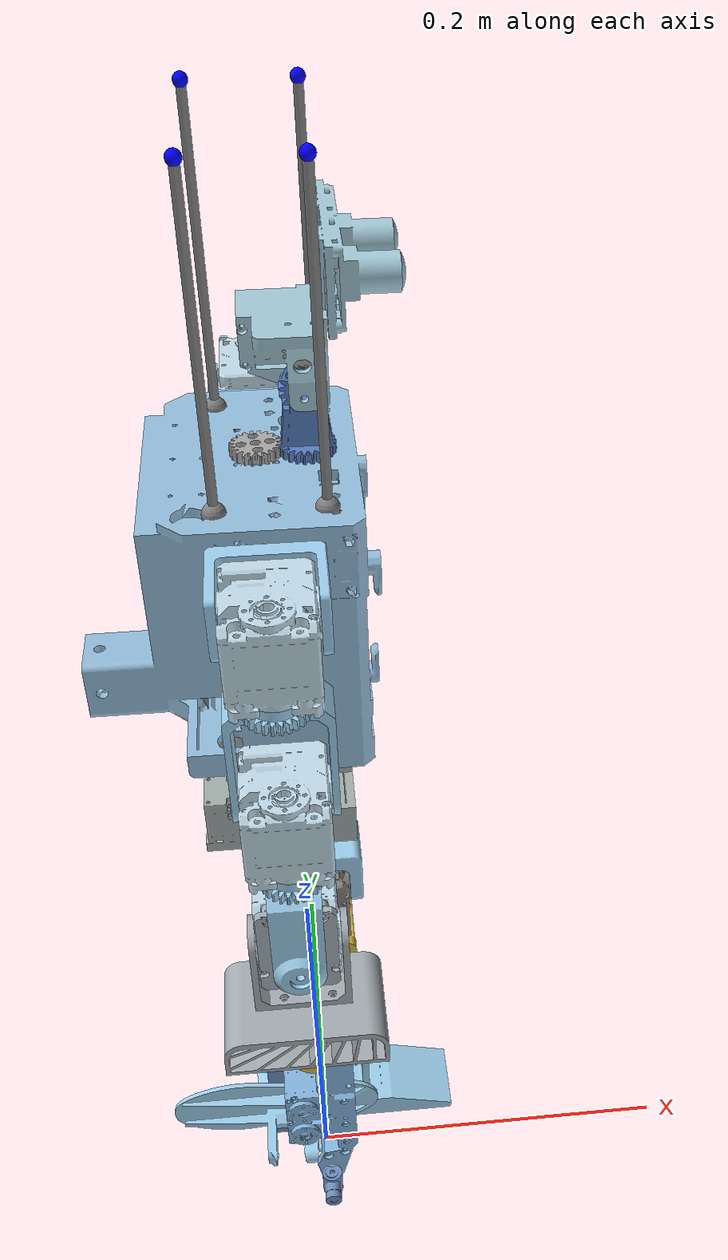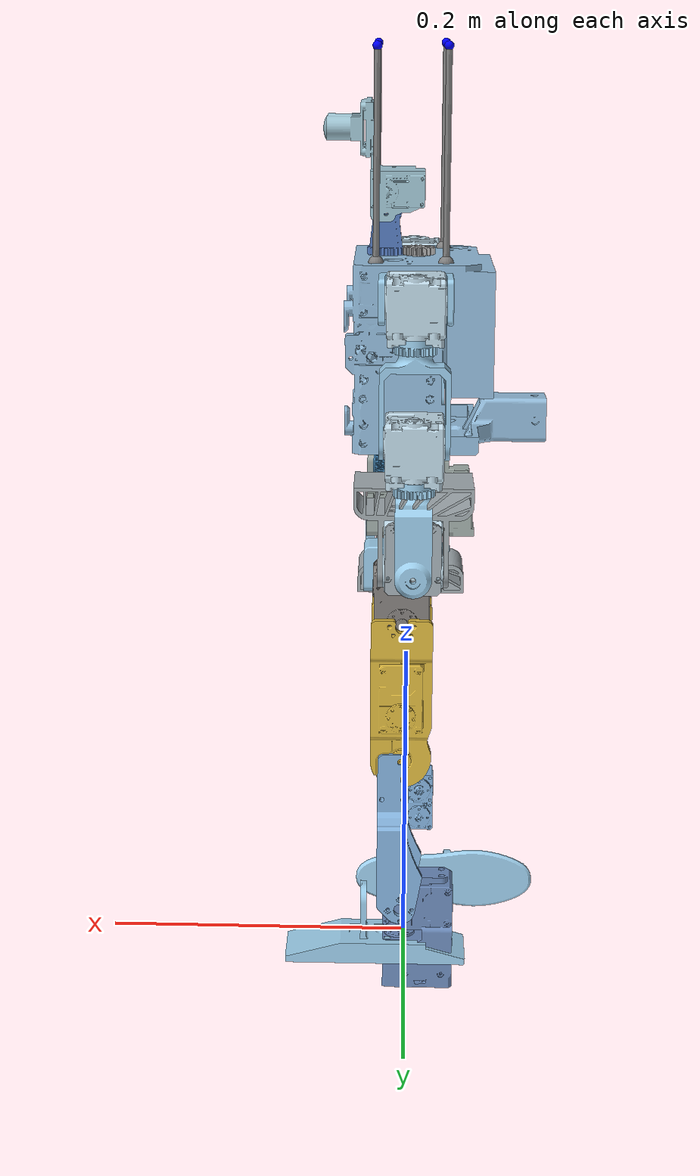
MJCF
<mujoco model="toddlerbot_OP3">
  <compiler angle="radian" autolimits="true" />

  <asset>
    <mesh name="torso_visual" file="../assemblies/toddlerbot/meshes/torso_visual.stl" />
    <mesh name="spur_1m_20t_visual" file="../assemblies/toddlerbot/meshes/spur_1m_20t_visual.stl" />
    <mesh name="neck_yaw_link_visual" file="../assemblies/toddlerbot/meshes/neck_yaw_link_visual.stl" />
    <mesh name="neck_pitch_link_visual" file="../assemblies/toddlerbot/meshes/neck_pitch_link_visual.stl" />
    <mesh name="spur_gear_(13_teeth)_visual" file="../assemblies/toddlerbot/meshes/spur_gear_(13_teeth)_visual.stl" />
    <mesh name="waist_gears_visual" file="../assemblies/toddlerbot/meshes/waist_gears_visual.stl" />
    <mesh name="waist_link_visual" file="../assemblies/toddlerbot/meshes/waist_link_visual.stl" />
    <mesh name="spiral_bevel_1m_14t_30deg_visual" file="../assemblies/toddlerbot/meshes/spiral_bevel_1m_14t_30deg_visual.stl" />
    <mesh name="spiral_bevel_1m_14t_30deg_2_visual" file="../assemblies/toddlerbot/meshes/spiral_bevel_1m_14t_30deg_2_visual.stl" />
    <mesh name="spur_gear_19_teeth_visual" file="../assemblies/toddlerbot/meshes/spur_gear_19_teeth_visual.stl" />
    <mesh name="spur_gear_21_teeth_visual" file="../assemblies/toddlerbot/meshes/spur_gear_21_teeth_visual.stl" />
    <mesh name="spur_gear_19_teeth_2_visual" file="../assemblies/toddlerbot/meshes/spur_gear_19_teeth_2_visual.stl" />
    <mesh name="spur_gear_21_teeth_2_visual" file="../assemblies/toddlerbot/meshes/spur_gear_21_teeth_2_visual.stl" />
    <mesh name="left_hip_yaw_link_visual" file="../assemblies/left_leg_OP3/meshes/left_hip_yaw_link_visual.stl" />
    <mesh name="left_hip_roll_link_visual" file="../assemblies/left_leg_OP3/meshes/left_hip_roll_link_visual.stl" />
    <mesh name="left_hip_pitch_link_xm430_visual" file="../assemblies/left_leg_OP3/meshes/left_hip_pitch_link_xm430_visual.stl" />
    <mesh name="left_calf_link_visual" file="../assemblies/left_leg_OP3/meshes/left_calf_link_visual.stl" />
    <mesh name="left_bearing_683_visual" file="../assemblies/left_leg_OP3/meshes/left_bearing_683_visual.stl" />
    <mesh name="left_bearing_683_2_visual" file="../assemblies/left_leg_OP3/meshes/left_bearing_683_2_visual.stl" />
    <mesh name="left_ank_pitch_link_visual" file="../assemblies/left_leg_OP3/meshes/left_ank_pitch_link_visual.stl" />
    <mesh name="left_ank_roll_link_visual" file="../assemblies/left_leg_OP3/meshes/left_ank_roll_link_visual.stl" />
    <mesh name="left_xm430_plate_visual" file="../assemblies/left_leg_OP3/meshes/left_xm430_plate_visual.stl" />
    <mesh name="left_knee_rod_visual" file="../assemblies/left_leg_OP3/meshes/left_knee_rod_visual.stl" />
    <mesh name="left_knee_rod_2_visual" file="../assemblies/left_leg_OP3/meshes/left_knee_rod_2_visual.stl" />
    <mesh name="right_hip_yaw_link_visual" file="../assemblies/right_leg_OP3/meshes/right_hip_yaw_link_visual.stl" />
    <mesh name="right_hip_roll_link_visual" file="../assemblies/right_leg_OP3/meshes/right_hip_roll_link_visual.stl" />
    <mesh name="right_hip_pitch_link_xm430_visual" file="../assemblies/right_leg_OP3/meshes/right_hip_pitch_link_xm430_visual.stl" />
    <mesh name="right_calf_link_visual" file="../assemblies/right_leg_OP3/meshes/right_calf_link_visual.stl" />
    <mesh name="right_bearing_683_visual" file="../assemblies/right_leg_OP3/meshes/right_bearing_683_visual.stl" />
    <mesh name="right_bearing_683_2_visual" file="../assemblies/right_leg_OP3/meshes/right_bearing_683_2_visual.stl" />
    <mesh name="right_ank_pitch_link_visual" file="../assemblies/right_leg_OP3/meshes/right_ank_pitch_link_visual.stl" />
    <mesh name="right_ank_roll_link_visual" file="../assemblies/right_leg_OP3/meshes/right_ank_roll_link_visual.stl" />
    <mesh name="right_xm430_plate_visual" file="../assemblies/right_leg_OP3/meshes/right_xm430_plate_visual.stl" />
    <mesh name="right_knee_rod_visual" file="../assemblies/right_leg_OP3/meshes/right_knee_rod_visual.stl" />
    <mesh name="right_knee_rod_2_visual" file="../assemblies/right_leg_OP3/meshes/right_knee_rod_2_visual.stl" />
    <mesh name="left_sho_pitch_link_visual" file="../assemblies/left_arm_umi/meshes/left_sho_pitch_link_visual.stl" />
    <mesh name="left_2xl430_gears_visual" file="../assemblies/left_arm_umi/meshes/left_2xl430_gears_visual.stl" />
    <mesh name="left_spur_1m_24t_drive_visual" file="../assemblies/left_arm_umi/meshes/left_spur_1m_24t_drive_visual.stl" />
    <mesh name="left_spur_1m_24t_driven_visual" file="../assemblies/left_arm_umi/meshes/left_spur_1m_24t_driven_visual.stl" />
    <mesh name="left_sho_yaw_link_visual" file="../assemblies/left_arm_umi/meshes/left_sho_yaw_link_visual.stl" />
    <mesh name="left_2xl430_gears_2_visual" file="../assemblies/left_arm_umi/meshes/left_2xl430_gears_2_visual.stl" />
    <mesh name="left_spur_1m_24t_drive_2_visual" file="../assemblies/left_arm_umi/meshes/left_spur_1m_24t_drive_2_visual.stl" />
    <mesh name="left_spur_1m_24t_driven_2_visual" file="../assemblies/left_arm_umi/meshes/left_spur_1m_24t_driven_2_visual.stl" />
    <mesh name="left_elb_yaw_link_visual" file="../assemblies/left_arm_umi/meshes/left_elb_yaw_link_visual.stl" />
    <mesh name="left_spur_1m_24t_driven_3_visual" file="../assemblies/left_arm_umi/meshes/left_spur_1m_24t_driven_3_visual.stl" />
    <mesh name="left_2xl430_gears_3_visual" file="../assemblies/left_arm_umi/meshes/left_2xl430_gears_3_visual.stl" />
    <mesh name="left_spur_1m_24t_drive_3_visual" file="../assemblies/left_arm_umi/meshes/left_spur_1m_24t_drive_3_visual.stl" />
    <mesh name="left_hand_visual" file="../assemblies/left_arm_umi/meshes/left_hand_visual.stl" />
    <mesh name="left_wrist_bearing_plate_visual" file="../assemblies/left_arm_umi/meshes/left_wrist_bearing_plate_visual.stl" />
    <mesh name="right_sho_pitch_link_visual" file="../assemblies/right_arm_umi/meshes/right_sho_pitch_link_visual.stl" />
    <mesh name="right_2xl430_gears_visual" file="../assemblies/right_arm_umi/meshes/right_2xl430_gears_visual.stl" />
    <mesh name="right_spur_1m_24t_drive_visual" file="../assemblies/right_arm_umi/meshes/right_spur_1m_24t_drive_visual.stl" />
    <mesh name="right_spur_1m_24t_driven_visual" file="../assemblies/right_arm_umi/meshes/right_spur_1m_24t_driven_visual.stl" />
    <mesh name="right_sho_yaw_link_visual" file="../assemblies/right_arm_umi/meshes/right_sho_yaw_link_visual.stl" />
    <mesh name="right_2xl430_gears_2_visual" file="../assemblies/right_arm_umi/meshes/right_2xl430_gears_2_visual.stl" />
    <mesh name="right_spur_1m_24t_drive_2_visual" file="../assemblies/right_arm_umi/meshes/right_spur_1m_24t_drive_2_visual.stl" />
    <mesh name="right_spur_1m_24t_driven_2_visual" file="../assemblies/right_arm_umi/meshes/right_spur_1m_24t_driven_2_visual.stl" />
    <mesh name="right_elb_yaw_link_visual" file="../assemblies/right_arm_umi/meshes/right_elb_yaw_link_visual.stl" />
    <mesh name="right_spur_1m_24t_driven_3_visual" file="../assemblies/right_arm_umi/meshes/right_spur_1m_24t_driven_3_visual.stl" />
    <mesh name="right_2xl430_gears_3_visual" file="../assemblies/right_arm_umi/meshes/right_2xl430_gears_3_visual.stl" />
    <mesh name="right_spur_1m_24t_drive_3_visual" file="../assemblies/right_arm_umi/meshes/right_spur_1m_24t_drive_3_visual.stl" />
    <mesh name="right_hand_visual" file="../assemblies/right_arm_umi/meshes/right_hand_visual.stl" />
    <mesh name="right_wrist_bearing_plate_visual" file="../assemblies/right_arm_umi/meshes/right_wrist_bearing_plate_visual.stl" />
  </asset>

  <worldbody>
    <body name="torso" pos="0 0 0.3442" quat="1 0 0 0">
      <inertial pos="-0.00836725 0.00286063 0.0722273" quat="1.0 0.0 0.0 0.0" mass="0.666527" diaginertia="1.94347e-03 1.56665e-03 1.39601e-03" />
      <freejoint />
      <site name="torso_left_front_site" pos="0.022 0.045 0.122" size="0.005" />
      <site name="torso_right_front_site" pos="0.022 -0.045 0.122"  size="0.005" />
      <site name="torso_left_back_site" pos="-0.022 0.045 0.122"  size="0.005" />
      <site name="torso_right_back_site" pos="-0.022 -0.045 0.122"  size="0.005" />
      <geom type="mesh" rgba="0.579662 0.741255 0.863591 1" mesh="torso_visual" class="visual" />
      <body name="spur_1m_20t" pos="-0.005 0 0.121487" quat="1 0 0 0">
        <inertial pos="0 0 0.0033746" quat="0.5 0.5 -0.5 0.5" mass="0.0015535" diaginertia="7.95589e-08 4.47265e-08 4.47265e-08" />
        <joint name="neck_yaw_drive" pos="0 0 0" axis="0 0 1" range="-2.87979 2.87979" damping="0.134" armature="0.0035" frictionloss="0.014" />
        <geom type="mesh" rgba="0.647059 0.647059 0.647059 1" mesh="spur_1m_20t_visual" class="visual" />
      </body>
      <body name="neck_yaw_link" pos="0.016 0 0.122487" quat="0 0 0 1">
        <inertial pos="2.72913e-05 -0.00019799 0.0115274" quat="0.707 0.0136941 -0.0132325 0.706957" mass="0.00851683" diaginertia="1.12518e-06 1.04071e-06 3.14701e-07" />
        <joint name="neck_yaw_driven" pos="0 0 0" axis="0 0 1" range="-2.61799 2.61799" damping="0.0" armature="0.0" frictionloss="0.0" />
        <geom type="mesh" rgba="0.336363 0.486808 0.749761 1" mesh="neck_yaw_link_visual" class="visual" />
        <body name="neck_pitch_link" pos="3.75e-10 -0.00515 0.0275" quat="0 0 0.707107 0.707107">
          <inertial pos="0.00749418 0.0361065 -0.00264504" quat="0.474724 0.822605 -0.280606 -0.138631" mass="0.0743" diaginertia="6.91897e-05 6.15087e-05 1.93388e-05" />
          <joint name="neck_pitch_driven" pos="0 0 0" axis="0 0 1" range="-1.5708 1.5708" damping="0.0" armature="0.0" frictionloss="0.0" />
          <geom type="mesh" rgba="0.634889 0.782176 0.838502 1" mesh="neck_pitch_link_visual" class="visual" />
          <body name="spur_gear_(13_teeth)" pos="0 0.01565 -0.0088" quat="0.707107 0 0 -0.707107">
            <inertial pos="9.15216e-10 -5.48726e-10 0.00927515" mass="0.000814694" diaginertia="2.02448e-08 2.02448e-08 1.89055e-08" />
            <joint name="neck_pitch_drive" pos="0 0 0" axis="0 0 1" range="-2.17495 2.17495" damping="0.134" armature="0.0035" frictionloss="0.014" />
            <geom type="mesh" rgba="0.647059 0.647059 0.647059 1" mesh="spur_gear_(13_teeth)_visual" class="visual" />
          </body>
        </body>
      </body>
      <body name="waist_gears" pos="0 0 0" quat="0 0 0 1">
        <inertial pos="-2.9089e-07 5.50356e-08 -0.012593" quat="0.49998 0.500022 0.500015 0.499983" mass="0.0263372" diaginertia="7.30247e-06 6.98591e-06 1.5367e-06" />
        <joint name="waist_yaw" pos="0 0 0" axis="0 0 1" range="-1.5708 1.5708" damping="0.108" armature="0.0053" frictionloss="0.001" />
        <geom type="mesh" rgba="0.269062 0.522792 0.704918 1" mesh="waist_gears_visual" class="visual" />
        <body name="waist_link" pos="-0.0227079 0 -0.014" quat="0.5 -0.5 -0.5 0.5">
          <inertial pos="-8.50027e-07 0.0262113 -0.0300299" quat="0.530242 0.468991 0.509735 0.488938" mass="0.17012" diaginertia="0.000206538 0.000161686 7.08781e-05" />
          <joint name="waist_roll" pos="0 0 0" axis="0 0 1" range="-0.523599 0.523599" damping="0.488" armature="0.0018" frictionloss="0.03" />
          <geom type="mesh" rgba="0.634303 0.681265 0.66861 1" mesh="waist_link_visual" class="visual" />
          <body name="spiral_bevel_1m_14t_30deg" pos="0 0.0196 -0.01275" quat="0.5 0.5 0.5 -0.5">
            <inertial pos="7.49714e-10 7.18022e-10 0.0066869" quat="0.5 0.5 -0.5 0.5" mass="0.000732615" diaginertia="1.4356e-08 1.34951e-08 1.34951e-08" />
            <joint name="waist_act_1" pos="0 0 0" axis="0 0 1" range="-4.67748 4.67748" damping="0.134" armature="0.0035" frictionloss="0.014" />
            <geom type="mesh" rgba="0.647059 0.647059 0.647059 1" mesh="spiral_bevel_1m_14t_30deg_visual" class="visual" />
          </body>
          <body name="spiral_bevel_1m_14t_30deg_2" pos="0 0.0196 -0.03275" quat="0.552838 0.552838 0.440874 -0.440874">
            <inertial pos="5.71143e-10 8.66847e-10 0.0066869" quat="0.5 0.5 -0.5 0.5" mass="0.000732615" diaginertia="1.4356e-08 1.34951e-08 1.34951e-08" />
            <joint name="waist_act_2" pos="0 0 0" axis="0 0 1" range="-4.67748 4.67748" damping="0.134" armature="0.0035" frictionloss="0.014" />
            <geom type="mesh" rgba="0.647059 0.647059 0.647059 1" mesh="spiral_bevel_1m_14t_30deg_2_visual" class="visual" />
          </body>
          <body name="spur_gear_19_teeth" pos="-0.037 0.0371 -0.0395" quat="0.707107 -0.707107 0 0">
            <inertial pos="-4.74032e-08 1.54601e-08 0.00454561" quat="0.5 0.5 -0.5 0.5" mass="0.00110844" diaginertia="4.63515e-08 2.95827e-08 2.95826e-08" />
            <joint name="left_hip_yaw_drive" pos="0 0 0" axis="0 0 1" range="-1.73614 1.73614" damping="0.134" armature="0.0035" frictionloss="0.014" />
            <geom type="mesh" rgba="0.615686 0.811765 0.929412 1" mesh="spur_gear_19_teeth_visual" class="visual" />
          </body>
          <body name="spur_gear_21_teeth" pos="-0.037 0.0411 -0.0195" quat="0.5 -0.5 -0.5 -0.5">
            <inertial pos="0 0 0.014228" quat="0.5 0.5 0.5 0.5" mass="0.0190186" diaginertia="7.88583e-06 7.83372e-06 2.82865e-06" />
            <joint name="left_hip_yaw_driven" pos="0 0 0" axis="0 0 1" range="-1.5708 1.5708" damping="0.0" armature="0.0" frictionloss="0.685" />
            <geom type="mesh" rgba="0.615686 0.811765 0.929412 1" mesh="spur_gear_21_teeth_visual" class="visual" />
            <geom pos="0 0 0.005" quat="0 1 0 0" type="mesh" rgba="0.615686 0.811765 0.929412 1" mesh="left_hip_yaw_link_visual" class="visual" />
            <body name="hip_roll_link" pos="0.019 0 0.031" quat="-0.707107 0 -0.707107 0">
              <inertial pos="-0.0119998 -0.000495981 -0.0185041" quat="-0.273471 0.652073 -0.267709 0.654482" mass="0.1106" diaginertia="3.14464e-05 3.02975e-05 2.28182e-05" />
              <joint name="left_hip_roll" pos="0 0 0" axis="0 0 1" range="-0.785398 0.785398" damping="0.075" armature="0.0044" frictionloss="0.252" />
              <geom type="mesh" rgba="0.516987 0.503478 0.490506 1" mesh="left_hip_roll_link_visual" class="visual" />
              <body name="left_hip_pitch_link_xm430" pos="-0.024 -0.019 -0.019" quat="0.5 0.5 0.5 -0.5">
                <inertial pos="-0.000757292 -0.0507148 -0.0126562" quat="0.719538 0.693946 0.0141894 -0.0224076" mass="0.114801" diaginertia="6.60879e-05 6.2263e-05 2.35772e-05" />
                <joint name="left_hip_pitch" pos="0 0 0" axis="0 0 1" range="-1.5708 1.5708" damping="0.075" armature="0.0044" frictionloss="0.252" />
                <geom type="mesh" rgba="0.870722 0.72641 0.247852 1" mesh="left_hip_pitch_link_xm430_visual" class="visual" />
                <body name="left_calf_link" pos="0 -0.096 -0.0092" quat="1 0 0 0">
                  <inertial pos="-0.0044699 -0.0405377 -0.00940432" quat="0.694858 0.718366 0.0105632 0.0318104" mass="0.031" diaginertia="3.24439e-05 2.73391e-05 7.60778e-06" />
                  <joint name="left_knee_pitch" pos="0 0 0" axis="0 0 1" range="0 2.0944" damping="0.0" armature="0.0" frictionloss="0.0" />
                  <geom type="mesh" rgba="0.522707 0.7074 0.875332 1" mesh="left_calf_link_visual" class="visual" />
                  <body name="bearing_683" pos="-0.00574025 0.0138582 -0.0262" quat="0.705054 0 0 0.709153">
                    <inertial pos="0 0 -0.00155" quat="0.5 0.5 -0.5 0.5" mass="0.000486947" diaginertia="3.53036e-09 2.15515e-09 2.15515e-09" />
                    <joint name="left_knee_front_rev_2" pos="0 0 0" axis="0 0 1" range="-6.28319 6.28319" damping="0.0" armature="0.0" frictionloss="0.0" />
                    <geom type="mesh" rgba="0.647059 0.647059 0.647059 1" mesh="left_bearing_683_visual" class="visual" />
                  </body>
                  <body name="bearing_683_2" pos="0.00574025 -0.0138582 -0.0262" quat="0.706081 0 0 0.708131">
                    <inertial pos="0 0 -0.00155" quat="0.5 0.5 -0.5 0.5" mass="0.000486947" diaginertia="3.53036e-09 2.15515e-09 2.15515e-09" />
                    <joint name="left_knee_back_rev_2" pos="0 0 0" axis="0 0 1" range="-6.28319 6.28319" damping="0.0" armature="0.0" frictionloss="0.0" />
                    <geom type="mesh" rgba="0.647059 0.647059 0.647059 1" mesh="left_bearing_683_2_visual" class="visual" />
                  </body>
                  <body name="ank_pitch_link" pos="0.0005 -0.1 -0.0294" quat="0.707107 0 0 -0.707107">
                    <inertial pos="-0.0123839 0.0196636 0.0188621" quat="0.494377 0.506923 -0.495974 0.502624" mass="0.159764" diaginertia="0.000111686 9.82045e-05 4.22141e-05" />
                    <joint name="left_ank_pitch" pos="0 0 0" axis="0 0 1" range="-1.74533 0.785398" damping="0.127" armature="0.004" frictionloss="0.069" />
                    <geom type="mesh" rgba="0.428388 0.551287 0.741289 1" mesh="left_ank_pitch_link_visual" class="visual" />
                    <body name="ank_roll_link" pos="0 0.02275 0.019" quat="0 0 0.707107 0.707107">
                      <inertial pos="-0.0269812 2.00109e-12 -0.0337332" quat="0.706434 0.0308367 0.0308367 0.706434" mass="0.0426" diaginertia="3.76215e-05 3.74798e-05 9.91691e-06" />
                      <joint name="left_ank_roll" pos="0 0 0" axis="0 0 1" range="-1.5708 1.5708" damping="0.127" armature="0.004" frictionloss="0.069" />
                      <geom type="mesh" rgba="0.615686 0.811765 0.929412 1" mesh="left_ank_roll_link_visual" class="visual" />
                      <geom name="ank_roll_link_collision" size="0.0245 0.021 0.06" pos="-0.0145 0 -0.039" type="box" rgba="0.615686 0.811765 0.929412 1" class="collision" />
                    </body>
                  </body>
                </body>
                <body name="xm430_plate" pos="-0.00015 -0.0615 -0.0304" quat="0.707107 0 0 0.707107">
                  <inertial pos="0 0 -0.0024039" quat="-0.13795 0.69352 0.13795 0.69352" mass="0.0027" diaginertia="3.85335e-07 2.95759e-07 1.00777e-07" />
                  <joint name="left_knee_act" pos="0 0 0" axis="0 0 1" range="0 2.0944" damping="0.08" armature="0.0012" frictionloss="0.134" />
                  <geom type="mesh" rgba="0.615686 0.811765 0.929412 1" mesh="left_xm430_plate_visual" class="visual" />
                  <body name="knee_rod" pos="0.0138582 0.00574025 -0.005" quat="0.00289853 0 0 -0.999996">
                    <inertial pos="0.0145945 -4.23023e-05 -0.00159962" quat="0.000218324 0.707354 -0.000218171 0.70686" mass="0.00316295" diaginertia="6.22669e-07 6.01533e-07 2.58956e-08" />
                    <joint name="left_knee_front_rev_1" pos="0 0 0" axis="0 0 1" range="-6.28319 6.28319" damping="0.0" armature="0.0" frictionloss="0.0" />
                    <geom type="mesh" rgba="0.620516 0.786408 0.885943 1" mesh="left_knee_rod_visual" class="visual" />
                  </body>
                  <body name="knee_rod_2" pos="-0.0138582 -0.00574025 -0.005" quat="0.00144929 0 0 -0.999999">
                    <inertial pos="0.0145945 4.2301e-05 -0.00159962" quat="-0.000218317 0.707354 0.000218165 0.70686" mass="0.00316295" diaginertia="6.22669e-07 6.01533e-07 2.58956e-08" />
                    <joint name="left_knee_back_rev_1" pos="0 0 0" axis="0 0 1" range="-6.28319 6.28319" damping="0.0" armature="0.0" frictionloss="0.0" />
                    <geom type="mesh" rgba="0.620516 0.786408 0.885943 1" mesh="left_knee_rod_2_visual" class="visual" />
                  </body>
                </body>
              </body>
            </body>
          </body>
          <body name="spur_gear_19_teeth_2" pos="0.037 0.0371 -0.0395" quat="0.707107 -0.707107 0 0">
            <inertial pos="-4.74032e-08 1.54601e-08 0.00454561" quat="0.5 0.5 -0.5 0.5" mass="0.00110844" diaginertia="4.63515e-08 2.95827e-08 2.95826e-08" />
            <joint name="right_hip_yaw_drive" pos="0 0 0" axis="0 0 1" range="-1.73614 1.73614" damping="0.134" armature="0.0035" frictionloss="0.014" />
            <geom type="mesh" rgba="0.615686 0.811765 0.929412 1" mesh="spur_gear_19_teeth_2_visual" class="visual" />
          </body>
          <body name="spur_gear_21_teeth_2" pos="0.037 0.0411 -0.0195" quat="0.5 -0.5 -0.5 -0.5">
            <inertial pos="0 0 0.0142286" quat="0.5 0.5 0.5 0.5" mass="0.0190186" diaginertia="7.88557e-06 7.83372e-06 2.82838e-06" />
            <joint name="right_hip_yaw_driven" pos="0 0 0" axis="0 0 1" range="-1.5708 1.5708" damping="0.0" armature="0.0" frictionloss="0.685" />
            <geom type="mesh" rgba="0.615686 0.811765 0.929412 1" mesh="spur_gear_21_teeth_2_visual" class="visual" />
            <geom pos="0 0 0.005" quat="0 -1 0 0" type="mesh" rgba="0.615686 0.811765 0.929412 1" mesh="right_hip_yaw_link_visual" class="visual" />
            <body name="hip_roll_link_2" pos="-0.019 0 0.031" quat="0 -0.707107 0 0.707107">
              <inertial pos="-0.0119998 -0.000495981 -0.0185041" quat="-0.273471 0.652073 -0.267709 0.654482" mass="0.1106" diaginertia="3.14464e-05 3.02975e-05 2.28182e-05" />
              <joint name="right_hip_roll" pos="0 0 0" axis="0 0 1" range="-0.785398 0.785398" damping="0.075" armature="0.0044" frictionloss="0.252" />
              <geom type="mesh" rgba="0.516987 0.503478 0.490506 1" mesh="right_hip_roll_link_visual" class="visual" />
              <body name="right_hip_pitch_link_xm430" pos="-0.024 -0.019 -0.019" quat="0.5 0.5 0.5 -0.5">
                <inertial pos="0.000757159 -0.0507148 -0.0126562" quat="0.719539 0.693946 -0.0141939 0.0224005" mass="0.114801" diaginertia="6.60879e-05 6.22631e-05 2.35772e-05" />
                <joint name="right_hip_pitch" pos="0 0 0" axis="0 0 1" range="-1.5708 1.5708" damping="0.075" armature="0.0044" frictionloss="0.252" />
                <geom type="mesh" rgba="0.870722 0.72641 0.247852 1" mesh="right_hip_pitch_link_xm430_visual" class="visual" />
                <body name="right_calf_link" pos="0 -0.096 -0.0092" quat="0 0 0 1">
                  <inertial pos="-0.0044699 0.0405377 -0.00940432" quat="0.718366 0.694858 -0.0318104 -0.0105632" mass="0.031" diaginertia="3.24439e-05 2.73391e-05 7.60778e-06" />
                  <joint name="right_knee_pitch" pos="0 0 0" axis="0 0 1" range="-2.0944 0" damping="0.0" armature="0.0" frictionloss="0.0" />
                  <geom type="mesh" rgba="0.522707 0.7074 0.875332 1" mesh="right_calf_link_visual" class="visual" />
                  <body name="bearing_683_3" pos="-0.00574025 -0.0138582 -0.0262" quat="0.00281484 0 0 0.999996">
                    <inertial pos="0 0 -0.00155" quat="0.5 0.5 -0.5 0.5" mass="0.000486947" diaginertia="3.53036e-09 2.15515e-09 2.15515e-09" />
                    <joint name="right_knee_front_rev_2" pos="0 0 0" axis="0 0 1" range="-6.28319 6.28319" damping="0.0" armature="0.0" frictionloss="0.0" />
                    <geom type="mesh" rgba="0.647059 0.647059 0.647059 1" mesh="right_bearing_683_visual" class="visual" />
                  </body>
                  <body name="bearing_683_4" pos="0.00574025 0.0138582 -0.0262" quat="0.00284659 0 0 0.999996">
                    <inertial pos="0 0 -0.00155" quat="0.5 0.5 -0.5 0.5" mass="0.000486947" diaginertia="3.53036e-09 2.15515e-09 2.15515e-09" />
                    <joint name="right_knee_back_rev_2" pos="0 0 0" axis="0 0 1" range="-6.28319 6.28319" damping="0.0" armature="0.0" frictionloss="0.0" />
                    <geom type="mesh" rgba="0.647059 0.647059 0.647059 1" mesh="right_bearing_683_2_visual" class="visual" />
                  </body>
                  <body name="ank_pitch_link_2" pos="0.0005 0.1 0.0086" quat="0 0.707107 0.707107 0">
                    <inertial pos="-0.0123839 0.0196636 0.0188621" quat="0.494377 0.506923 -0.495974 0.502624" mass="0.159764" diaginertia="0.000111686 9.82045e-05 4.22141e-05" />
                    <joint name="right_ank_pitch" pos="0 0 0" axis="0 0 1" range="-1.74533 0.785398" damping="0.127" armature="0.004" frictionloss="0.069" />
                    <geom type="mesh" rgba="0.428388 0.551287 0.741289 1" mesh="right_ank_pitch_link_visual" class="visual" />
                    <body name="ank_roll_link_2" pos="0 0.02275 0.019" quat="0 0 0.707107 0.707107">
                      <inertial pos="-0.0269812 2.0011e-12 -0.0337332" quat="0.706434 0.0308367 0.0308367 0.706434" mass="0.0426" diaginertia="3.76215e-05 3.74798e-05 9.91691e-06" />
                      <joint name="right_ank_roll" pos="0 0 0" axis="0 0 1" range="-1.5708 1.5708" damping="0.127" armature="0.004" frictionloss="0.069" />
                      <geom type="mesh" rgba="0.615686 0.811765 0.929412 1" mesh="right_ank_roll_link_visual" class="visual" />
                      <geom name="ank_roll_link_2_collision" size="0.0245 0.021 0.06" pos="-0.0145 0 -0.039" type="box" rgba="0.615686 0.811765 0.929412 1" class="collision" />
                    </body>
                  </body>
                </body>
                <body name="xm430_plate_2" pos="0.00015 -0.0615 -0.0304" quat="0 0 0 1">
                  <inertial pos="0 0 -0.0024039" quat="0.587938 0.392847 -0.587938 0.392847" mass="0.0027" diaginertia="3.85335e-07 2.95759e-07 1.00777e-07" />
                  <joint name="right_knee_act" pos="0 0 0" axis="0 0 1" range="-2.0944 0" damping="0.08" armature="0.0012" frictionloss="0.134" />
                  <geom type="mesh" rgba="0.615686 0.811765 0.929412 1" mesh="right_xm430_plate_visual" class="visual" />
                  <body name="knee_rod_3" pos="-0.00574025 -0.0138582 -0.005" quat="0.709094 0 0 0.705114">
                    <inertial pos="0.0145946 3.74168e-05 -0.00159962" quat="-0.000193109 0.707354 0.000192975 0.70686" mass="0.00316295" diaginertia="6.22669e-07 6.01533e-07 2.58955e-08" />
                    <joint name="right_knee_front_rev_1" pos="0 0 0" axis="0 0 1" range="-6.28319 6.28319" damping="0.0" armature="0.0" frictionloss="0.0" />
                    <geom type="mesh" rgba="0.620516 0.786408 0.885943 1" mesh="right_knee_rod_visual" class="visual" />
                  </body>
                  <body name="knee_rod_4" pos="0.00574025 0.0138582 -0.005" quat="0.709117 0 0 0.705091">
                    <inertial pos="0.0145946 3.92704e-05 -0.00159962" quat="-0.000202676 0.707354 0.000202535 0.70686" mass="0.00316295" diaginertia="6.22669e-07 6.01533e-07 2.58955e-08" />
                    <joint name="right_knee_back_rev_1" pos="0 0 0" axis="0 0 1" range="-6.28319 6.28319" damping="0.0" armature="0.0" frictionloss="0.0" />
                    <geom type="mesh" rgba="0.620516 0.786408 0.885943 1" mesh="right_knee_rod_2_visual" class="visual" />
                  </body>
                </body>
              </body>
            </body>
          </body>
        </body>
      </body>
      <body name="sho_pitch_link" pos="-0.003 0.062 0.104237" quat="0.707107 -0.707107 0 0">
        <inertial pos="5.82542e-11 -5.12646e-05 0.00824408" quat="0.0155166 0.706937 0.0155166 0.706937" mass="0.0086" diaginertia="3.08064e-06 2.9104e-06 1.22729e-06" />
        <joint name="left_sho_pitch" pos="0 0 0" axis="0 0 1" range="-3.14159 1.5708" damping="0.127" armature="0.004" frictionloss="0.069" />
        <geom type="mesh" rgba="0.615686 0.811765 0.929412 1" mesh="left_sho_pitch_link_visual" class="visual" />
        <body name="2xl430_gears" pos="-0.019 0.001 0.027" quat="0 -0.707107 0 0.707107">
          <inertial pos="-0.0115932 -0.00242388 -0.0185511" quat="-0.0177754 0.697807 -0.134615 0.703298" mass="0.118" diaginertia="3.59197e-05 3.28027e-05 2.73617e-05" />
          <joint name="left_sho_roll" pos="0 0 0" axis="0 0 1" range="-1.5708 0.349066" damping="0.12" armature="0.0042" frictionloss="0.292" />
          <geom type="mesh" rgba="0.75606 0.858047 0.913203 1" mesh="left_2xl430_gears_visual" class="visual" />
          <body name="spur_1m_24t_drive" pos="-0.024 -0.019 -0.019" quat="0.707107 0.707107 0 0">
            <inertial pos="0 0 0.00479491" quat="0.5 0.5 -0.5 0.5" mass="0.0032" diaginertia="2.38389e-07 1.40193e-07 1.40193e-07" />
            <joint name="left_sho_yaw_drive" pos="0 0 0" axis="0 0 1" range="-2.61799 2.61799" damping="0.12" armature="0.0042" frictionloss="0.292" />
            <geom type="mesh" rgba="0.615686 0.811765 0.929412 1" mesh="left_spur_1m_24t_drive_visual" class="visual" />
          </body>
          <body name="spur_1m_24t_driven" pos="-3.58072e-10 -0.027 -0.019" quat="0.707107 0.707107 0 0">
            <inertial pos="0 0 0.0216847" mass="0.0172" diaginertia="1.08489e-05 7.45531e-06 4.71043e-06" />
            <joint name="left_sho_yaw_driven" pos="0 0 0" axis="0 0 1" range="-2.61799 2.61799" damping="0.0" armature="0.0" frictionloss="0.0" />
            <geom type="mesh" rgba="0.231373 0.380392 0.705882 1" mesh="left_spur_1m_24t_driven_visual" class="visual" />
            <geom pos="0 0 0.0016" quat="0 -1 0 0" type="mesh" rgba="0.615686 0.811765 0.929412 1" mesh="left_sho_yaw_link_visual" class="visual" />
            <body name="2xl430_gears_2" pos="0 0.019 0.0606" quat="0.707107 -0.707107 0 0">
              <inertial pos="-0.0115932 -0.00242388 -0.0185511" quat="-0.0177754 0.697807 -0.134615 0.703298" mass="0.118" diaginertia="3.59197e-05 3.28027e-05 2.73617e-05" />
              <joint name="left_elbow_roll" pos="0 0 0" axis="0 0 1" range="-1.91986 2.44346" damping="0.12" armature="0.0042" frictionloss="0.292" />
              <geom type="mesh" rgba="0.75606 0.858047 0.913203 1" mesh="left_2xl430_gears_2_visual" class="visual" />
              <body name="spur_1m_24t_drive_2" pos="-0.024 -0.019 -0.019" quat="0.707107 0.707107 0 0">
                <inertial pos="0 0 0.00479491" quat="0.5 0.5 -0.5 0.5" mass="0.0032" diaginertia="2.38389e-07 1.40193e-07 1.40193e-07" />
                <joint name="left_elbow_yaw_drive" pos="0 0 0" axis="0 0 1" range="-2.61799 2.61799" damping="0.12" armature="0.0042" frictionloss="0.292" />
                <geom type="mesh" rgba="0.615686 0.811765 0.929412 1" mesh="left_spur_1m_24t_drive_2_visual" class="visual" />
              </body>
              <body name="spur_1m_24t_driven_2" pos="-3.58064e-10 -0.027 -0.019" quat="0.5 0.5 0.5 -0.5">
                <inertial pos="4.05998e-08 0.00116422 0.0253227" quat="0.939794 -0.341741 0 0" mass="0.0229" diaginertia="1.98349e-05 1.15991e-05 1.01946e-05" />
                <joint name="left_elbow_yaw_driven" pos="0 0 0" axis="0 0 1" range="-2.61799 2.61799" damping="0.0" armature="0.0" frictionloss="0.0" />
                <geom type="mesh" rgba="0.231373 0.380392 0.705882 1" mesh="left_spur_1m_24t_driven_2_visual" class="visual" />
                <geom pos="0 0 0.0016" quat="0 -1 0 0" type="mesh" rgba="0.615686 0.811765 0.929412 1" mesh="left_elb_yaw_link_visual" class="visual" />
                <geom pos="0 0.0253 0.0536" quat="0.5 -0.5 0.5 0.5" type="mesh" rgba="0.231373 0.380392 0.705882 1" mesh="left_spur_1m_24t_driven_3_visual" class="visual" />
                <body name="2xl430_gears_3" pos="0 0.0237 0.0536" quat="0.707107 -0.707107 0 0">
                  <inertial pos="0.000431007 0.0114333 -0.0254637" quat="0.74781 0.660979 -0.0438307 0.0443286" mass="0.1229" diaginertia="3.89724e-05 3.40456e-05 3.02845e-05" />
                  <joint name="left_wrist_pitch_driven" pos="0 0 0" axis="0 0 1" range="-1.39626 1.91986" damping="0.0" armature="0.0" frictionloss="0.0" />
                  <geom type="mesh" rgba="0.75606 0.858047 0.913203 1" mesh="left_2xl430_gears_3_visual" class="visual" />
                  <geom pos="0.0155 0 -0.045" quat="0.707107 0 0 -0.707107" type="mesh" rgba="0.644963 0.690118 0.717068 1" mesh="left_wrist_bearing_plate_visual" class="visual" />
                  <body name="spur_1m_24t_drive_3" pos="-1.52441e-10 0.024 -0.008" quat="0.707107 0 0 -0.707107">
                    <inertial pos="0 0 0.00479491" quat="0.5 0.5 -0.5 0.5" mass="0.0032" diaginertia="2.38389e-07 1.40193e-07 1.40193e-07" />
                    <joint name="left_wrist_pitch_drive" pos="0 0 0" axis="0 0 1" range="-1.91986 1.39626" damping="0.12" armature="0.0042" frictionloss="0.292" />
                    <geom type="mesh" rgba="0.615686 0.811765 0.929412 1" mesh="left_spur_1m_24t_drive_3_visual" class="visual" />
                  </body>
                  <body name="hand" pos="0.019 -3.58082e-10 -0.027" quat="0 0.707107 0 0.707107">
                    <inertial pos="-0.00370787 0.0421273 -0.0184903" quat="0.857226 -0.00187348 0.000260562 0.514937" mass="0.0395" diaginertia="2.58069e-05 2.4304e-05 1.34665e-05" />
                    <joint name="left_wrist_roll" pos="0 0 0" axis="0 0 1" range="-1.91986 1.39626" damping="0.12" armature="0.0042" frictionloss="0.292" />
                    <geom type="mesh" rgba="0.641499 0.676247 0.697096 1" mesh="left_hand_visual" class="visual" />
                  </body>
                </body>
              </body>
            </body>
          </body>
        </body>
      </body>
      <body name="sho_pitch_link_2" pos="-0.003 -0.062 0.104237" quat="0 0 0.707107 -0.707107">
        <inertial pos="5.82542e-11 -5.12646e-05 0.00824408" quat="0.0155166 0.706937 0.0155166 0.706937" mass="0.0086" diaginertia="3.08064e-06 2.9104e-06 1.22729e-06" />
        <joint name="right_sho_pitch" pos="0 0 0" axis="0 0 1" range="-1.5708 3.14159" damping="0.127" armature="0.004" frictionloss="0.069" />
        <geom type="mesh" rgba="0.615686 0.811765 0.929412 1" mesh="right_sho_pitch_link_visual" class="visual" />
        <body name="2xl430_gears_4" pos="-0.019 0.001 0.027" quat="0 0.707107 0 -0.707107">
          <inertial pos="-0.0115794 -0.00242258 -0.0185511" quat="-0.0158908 0.69769 -0.13596 0.703201" mass="0.118" diaginertia="3.59112e-05 3.27863e-05 2.73235e-05" />
          <joint name="right_sho_roll" pos="0 0 0" axis="0 0 1" range="-1.5708 0.349066" damping="0.12" armature="0.0042" frictionloss="0.292" />
          <geom type="mesh" rgba="0.75606 0.858047 0.913203 1" mesh="right_2xl430_gears_visual" class="visual" />
          <body name="spur_1m_24t_drive_4" pos="-0.024 -0.019 -0.019" quat="0.707107 0.707107 0 0">
            <inertial pos="0 0 0.00479491" quat="0.5 0.5 -0.5 0.5" mass="0.0032" diaginertia="2.38389e-07 1.40193e-07 1.40193e-07" />
            <joint name="right_sho_yaw_drive" pos="0 0 0" axis="0 0 1" range="-2.61799 2.61799" damping="0.12" armature="0.0042" frictionloss="0.292" />
            <geom type="mesh" rgba="0.615686 0.811765 0.929412 1" mesh="right_spur_1m_24t_drive_visual" class="visual" />
          </body>
          <body name="spur_1m_24t_driven_4" pos="-3.58068e-10 -0.027 -0.019" quat="0.707107 0.707107 0 0">
            <inertial pos="0 0 0.0216847" mass="0.0172" diaginertia="1.08489e-05 7.45531e-06 4.71043e-06" />
            <joint name="right_sho_yaw_driven" pos="0 0 0" axis="0 0 1" range="-2.61799 2.61799" damping="0.0" armature="0.0" frictionloss="0.0" />
            <geom type="mesh" rgba="0.231373 0.380392 0.705882 1" mesh="right_spur_1m_24t_driven_visual" class="visual" />
            <geom pos="0 0 0.0016" quat="0 1 0 0" type="mesh" rgba="0.615686 0.811765 0.929412 1" mesh="right_sho_yaw_link_visual" class="visual" />
            <body name="2xl430_gears_5" pos="0 0.019 0.0606" quat="-0.707107 0.707107 0 0">
              <inertial pos="-0.0115794 -0.00242258 -0.0185511" quat="-0.0158908 0.69769 -0.13596 0.703201" mass="0.118" diaginertia="3.59112e-05 3.27863e-05 2.73235e-05" />
              <joint name="right_elbow_roll" pos="0 0 0" axis="0 0 1" range="-1.91986 2.44346" damping="0.12" armature="0.0042" frictionloss="0.292" />
              <geom type="mesh" rgba="0.75606 0.858047 0.913203 1" mesh="right_2xl430_gears_2_visual" class="visual" />
              <body name="spur_1m_24t_drive_5" pos="-0.024 -0.019 -0.019" quat="0.707107 0.707107 0 0">
                <inertial pos="0 0 0.00479491" quat="0.5 0.5 -0.5 0.5" mass="0.0032" diaginertia="2.38389e-07 1.40193e-07 1.40193e-07" />
                <joint name="right_elbow_yaw_drive" pos="0 0 0" axis="0 0 1" range="-2.61799 2.61799" damping="0.12" armature="0.0042" frictionloss="0.292" />
                <geom type="mesh" rgba="0.615686 0.811765 0.929412 1" mesh="right_spur_1m_24t_drive_2_visual" class="visual" />
              </body>
              <body name="spur_1m_24t_driven_5" pos="-3.58071e-10 -0.027 -0.019" quat="0.707107 0.707107 0 0">
                <inertial pos="0.00116422 -4.05998e-08 0.0253227" quat="0.664535 0.241647 0.241647 0.664535" mass="0.0229" diaginertia="1.98349e-05 1.15991e-05 1.01946e-05" />
                <joint name="right_elbow_yaw_driven" pos="0 0 0" axis="0 0 1" range="-2.61799 2.61799" damping="0.0" armature="0.0" frictionloss="0.0" />
                <geom type="mesh" rgba="0.231373 0.380392 0.705882 1" mesh="right_spur_1m_24t_driven_2_visual" class="visual" />
                <geom pos="0 0 0.0016" quat="0 0.707107 -0.707107 0" type="mesh" rgba="0.615686 0.811765 0.929412 1" mesh="right_elb_yaw_link_visual" class="visual" />
                <geom pos="0.0253 0 0.0536" quat="0 0.707107 0 0.707107" type="mesh" rgba="0.231373 0.380392 0.705882 1" mesh="right_spur_1m_24t_driven_3_visual" class="visual" />
                <body name="2xl430_gears_6" pos="0.0237 0 0.0536" quat="-0.5 0.5 -0.5 0.5">
                  <inertial pos="0.000431007 0.0114201 -0.025465" quat="0.750218 0.658262 -0.0437552 0.0441562" mass="0.1229" diaginertia="3.89634e-05 3.40266e-05 3.02478e-05" />
                  <joint name="right_wrist_pitch_driven" pos="0 0 0" axis="0 0 1" range="-1.91986 1.39626" damping="0.0" armature="0.0" frictionloss="0.0" />
                  <geom type="mesh" rgba="0.75606 0.858047 0.913203 1" mesh="right_2xl430_gears_3_visual" class="visual" />
                  <geom pos="0.0155 0 -0.045" quat="0.707107 0 0 -0.707107" type="mesh" rgba="0.644963 0.690118 0.717068 1" mesh="right_wrist_bearing_plate_visual" class="visual" />
                  <body name="spur_1m_24t_drive_6" pos="-1.52443e-10 0.024 -0.008" quat="0.707107 0 0 -0.707107">
                    <inertial pos="0 0 0.00479491" quat="0.5 0.5 -0.5 0.5" mass="0.0032" diaginertia="2.38389e-07 1.40193e-07 1.40193e-07" />
                    <joint name="right_wrist_pitch_drive" pos="0 0 0" axis="0 0 1" range="-1.39626 1.91986" damping="0.12" armature="0.0042" frictionloss="0.292" />
                    <geom type="mesh" rgba="0.615686 0.811765 0.929412 1" mesh="right_spur_1m_24t_drive_3_visual" class="visual" />
                  </body>
                  <body name="hand_2" pos="0.019 -3.58068e-10 -0.027" quat="0.707107 0 0.707107 0">
                    <inertial pos="0.00370787 -0.0421273 -0.0195097" quat="0.857226 -0.00187348 0.000260562 0.514937" mass="0.0395" diaginertia="2.58069e-05 2.4304e-05 1.34665e-05" />
                    <joint name="right_wrist_roll" pos="0 0 0" axis="0 0 1" range="-1.39626 1.91986" damping="0.12" armature="0.0042" frictionloss="0.292" />
                    <geom type="mesh" rgba="0.641499 0.676247 0.697096 1" mesh="right_hand_visual" class="visual" />
                  </body>
                </body>
              </body>
            </body>
          </body>
        </body>
      </body>
    </body>
    <body name="anchor_left_front" pos="0.022 0.045 0.6">
      <inertial pos="0 0 0" mass="1e-2" diaginertia="1e-4 1e-4 1e-4"/>
      <joint name="hang_left_front_x" type="slide" axis="1 0 0"/>
      <joint name="hang_left_front_y" type="slide" axis="0 1 0"/>
      <site name="anchor_left_front_site" pos="0 0 0" size="0.003" rgba="0 0 1 1"/>
    </body>
    <body name="anchor_left_back" pos="-0.022 0.045 0.6">
      <inertial pos="0 0 0" mass="1e-2" diaginertia="1e-4 1e-4 1e-4"/>
      <joint name="hang_left_back_x" type="slide" axis="1 0 0"/>
      <joint name="hang_left_back_y" type="slide" axis="0 1 0"/>
      <site name="anchor_left_back_site" pos="0 0 0" size="0.003" rgba="0 0 1 1"/>
    </body>
    <body name="anchor_right_front" pos="0.022 -0.045 0.6">
      <inertial pos="0 0 0" mass="1e-2" diaginertia="1e-4 1e-4 1e-4"/>
      <joint name="hang_right_front_x" type="slide" axis="1 0 0"/>
      <joint name="hang_right_front_y" type="slide" axis="0 1 0"/>
      <site name="anchor_right_front_site" pos="0 0 0" size="0.003" rgba="0 0 1 1"/>
    </body>
    <body name="anchor_right_back" pos="-0.022 -0.045 0.6">
      <inertial pos="0 0 0" mass="1e-2" diaginertia="1e-4 1e-4 1e-4"/>
      <joint name="hang_right_back_x" type="slide" axis="1 0 0"/>
      <joint name="hang_right_back_y" type="slide" axis="0 1 0"/>
      <site name="anchor_right_back_site" pos="0 0 0" size="0.003" rgba="0 0 1 1"/>
    </body>
  </worldbody>
  <option>
    <flag eulerdamp="disable" />
  </option>
  <equality>
    <joint joint1="neck_yaw_driven" joint2="neck_yaw_drive" polycoef="0 -0.722222 0 0 0" solimp="0.9999 0.9999 0.001 0.5 2" solref="0.004 1" />
    <joint joint1="neck_pitch_driven" joint2="neck_pitch_drive" polycoef="0 -0.909091 0 0 0" solimp="0.9999 0.9999 0.001 0.5 2" solref="0.004 1" />
    <joint joint1="left_hip_yaw_driven" joint2="left_hip_yaw_drive" polycoef="0 -0.904762 0 0 0" solimp="0.9999 0.9999 0.001 0.5 2" solref="0.004 1" />
    <joint joint1="right_hip_yaw_driven" joint2="right_hip_yaw_drive" polycoef="0 -0.904762 0 0 0" solimp="0.9999 0.9999 0.001 0.5 2" solref="0.004 1" />
    <joint joint1="left_sho_yaw_driven" joint2="left_sho_yaw_drive" polycoef="0 -1.0 0 0 0" solimp="0.9999 0.9999 0.001 0.5 2" solref="0.004 1" />
    <joint joint1="left_elbow_yaw_driven" joint2="left_elbow_yaw_drive" polycoef="0 -1.0 0 0 0" solimp="0.9999 0.9999 0.001 0.5 2" solref="0.004 1" />
    <joint joint1="left_wrist_pitch_driven" joint2="left_wrist_pitch_drive" polycoef="0 -1.0 0 0 0" solimp="0.9999 0.9999 0.001 0.5 2" solref="0.004 1" />
    <joint joint1="right_sho_yaw_driven" joint2="right_sho_yaw_drive" polycoef="0 -1.0 0 0 0" solimp="0.9999 0.9999 0.001 0.5 2" solref="0.004 1" />
    <joint joint1="right_elbow_yaw_driven" joint2="right_elbow_yaw_drive" polycoef="0 -1.0 0 0 0" solimp="0.9999 0.9999 0.001 0.5 2" solref="0.004 1" />
    <joint joint1="right_wrist_pitch_driven" joint2="right_wrist_pitch_drive" polycoef="0 -1.0 0 0 0" solimp="0.9999 0.9999 0.001 0.5 2" solref="0.004 1" />
    <weld body1="knee_rod" body2="bearing_683" solimp="0.9999 0.9999 0.001 0.5 2" solref="0.004 1" />
    <weld body1="knee_rod_2" body2="bearing_683_2" solimp="0.9999 0.9999 0.001 0.5 2" solref="0.004 1" />
    <weld body1="knee_rod_3" body2="bearing_683_3" solimp="0.9999 0.9999 0.001 0.5 2" solref="0.004 1" />
    <weld body1="knee_rod_4" body2="bearing_683_4" solimp="0.9999 0.9999 0.001 0.5 2" solref="0.004 1" />
  </equality>
  <tendon>
    <fixed name="waist_roll_coupling" limited="true" range="-0.03 0.03">
      <joint joint="waist_act_1" coef="0.291667" />
      <joint joint="waist_act_2" coef="-0.291667" />
      <joint joint="waist_roll" coef="1" />
    </fixed>
    <fixed name="waist_yaw_coupling" limited="true" range="-0.001 0.001">
      <joint joint="waist_act_1" coef="-0.208333" />
      <joint joint="waist_act_2" coef="-0.208333" />
      <joint joint="waist_yaw" coef="1" />
    </fixed>
    <spatial name="tendon_left_front" class="anchor_tendon">
      <site site="anchor_left_front_site"/>
      <site site="torso_left_front_site"/>
    </spatial>
    <spatial name="tendon_left_back" class="anchor_tendon">
      <site site="anchor_left_back_site"/>
      <site site="torso_left_back_site"/>
    </spatial>
    <spatial name="tendon_right_front" class="anchor_tendon">
      <site site="anchor_right_front_site"/>
      <site site="torso_right_front_site"/>
    </spatial>
    <spatial name="tendon_right_back" class="anchor_tendon">
      <site site="anchor_right_back_site"/>
      <site site="torso_right_back_site"/>
    </spatial>
  </tendon>
  <keyframe>
    <key name="home" qpos="0 0 0.336 1 0 0 0 0 0 0 0 0 0 0 0 0 0 0 -0.267268 0.523599 -0.523599 -0.523599 -0.25637 0 0.523599 -0.523599 -0.523599 0 0 0 0.267268 -0.523599 0.523599 0.523599 -0.25637 0 -0.523599 0.523599 0.523599 0.174533 -0.261799 1.0472 -1.0472 0.523599 -1.0472 1.0472 1.309 -1.309 0 -0.174533 -0.261799 -1.0472 1.0472 0.523599 1.0472 -1.0472 -1.309 1.309 0 0.022 0.045 -0.022 0.045 0.022 -0.045 -0.022 -0.045" />
  </keyframe>
  <contact>
    <pair geom1="ank_roll_link_collision" geom2="floor" />
    <pair geom1="ank_roll_link_2_collision" geom2="floor" />
    <pair geom1="ank_roll_link_collision" geom2="ank_roll_link_2_collision" />
  </contact>
  <actuator>
    <motor name="neck_yaw_drive" joint="neck_yaw_drive" class="XC330" />
    <motor name="neck_pitch_drive" joint="neck_pitch_drive" class="XC330" />
    <motor name="waist_act_1" joint="waist_act_1" class="XC330" />
    <motor name="waist_act_2" joint="waist_act_2" class="XC330" />
    <motor name="left_hip_yaw_drive" joint="left_hip_yaw_drive" class="XC330" />
    <motor name="left_hip_roll" joint="left_hip_roll" class="2XC430" />
    <motor name="left_hip_pitch" joint="left_hip_pitch" class="2XC430" />
    <motor name="left_knee_act" joint="left_knee_act" class="XM430" />
    <motor name="left_ank_roll" joint="left_ank_roll" class="XC430" />
    <motor name="left_ank_pitch" joint="left_ank_pitch" class="XC430" />
    <motor name="right_hip_yaw_drive" joint="right_hip_yaw_drive" class="XC330" />
    <motor name="right_hip_roll" joint="right_hip_roll" class="2XC430" />
    <motor name="right_hip_pitch" joint="right_hip_pitch" class="2XC430" />
    <motor name="right_knee_act" joint="right_knee_act" class="XM430" />
    <motor name="right_ank_roll" joint="right_ank_roll" class="XC430" />
    <motor name="right_ank_pitch" joint="right_ank_pitch" class="XC430" />
    <motor name="left_sho_pitch" joint="left_sho_pitch" class="XC430" />
    <motor name="left_sho_roll" joint="left_sho_roll" class="2XL430" />
    <motor name="left_sho_yaw_drive" joint="left_sho_yaw_drive" class="2XL430" />
    <motor name="left_elbow_roll" joint="left_elbow_roll" class="2XL430" />
    <motor name="left_elbow_yaw_drive" joint="left_elbow_yaw_drive" class="2XL430" />
    <motor name="left_wrist_pitch_drive" joint="left_wrist_pitch_drive" class="2XL430" />
    <motor name="left_wrist_roll" joint="left_wrist_roll" class="2XL430" />
    <motor name="right_sho_pitch" joint="right_sho_pitch" class="XC430" />
    <motor name="right_sho_roll" joint="right_sho_roll" class="2XL430" />
    <motor name="right_sho_yaw_drive" joint="right_sho_yaw_drive" class="2XL430" />
    <motor name="right_elbow_roll" joint="right_elbow_roll" class="2XL430" />
    <motor name="right_elbow_yaw_drive" joint="right_elbow_yaw_drive" class="2XL430" />
    <motor name="right_wrist_pitch_drive" joint="right_wrist_pitch_drive" class="2XL430" />
    <motor name="right_wrist_roll" joint="right_wrist_roll" class="2XL430" />
    <general name="hang_left_front" tendon="tendon_left_front" class="hang_motor"/>
    <position name="hang_left_front_x" joint="hang_left_front_x" class="slide_anchor_motor"/>
    <position name="hang_left_front_y" joint="hang_left_front_y" class="slide_anchor_motor"/>
    <general name="hang_right_front" tendon="tendon_right_front" class="hang_motor"/>
    <position name="hang_right_front_x" joint="hang_right_front_x" class="slide_anchor_motor"/>
    <position name="hang_right_front_y" joint="hang_right_front_y" class="slide_anchor_motor"/>
    <general name="hang_left_back" tendon="tendon_left_back" class="hang_motor"/>
    <position name="hang_left_back_x" joint="hang_left_back_x" class="slide_anchor_motor"/>
    <position name="hang_left_back_y" joint="hang_left_back_y" class="slide_anchor_motor"/>
    <general name="hang_right_back" tendon="tendon_right_back" class="hang_motor"/>
    <position name="hang_right_back_x" joint="hang_right_back_x" class="slide_anchor_motor"/>
    <position name="hang_right_back_y" joint="hang_right_back_y" class="slide_anchor_motor"/>
  </actuator>
  <default>
    <geom type="mesh" solref="0.004 1" />
    <default class="slide_anchor_motor">
      <position kp="0.1" dampratio="1"/>
    </default>
    <default class="hang_motor">
      <general gainprm="1.0"/>
    </default>
    <default class="anchor_tendon">
      <tendon limited="true" range="0.1 0.6" damping="10" width="0.002"/>
    </default>
    <default class="visual">
      <geom type="mesh" contype="0" conaffinity="0" group="2" />
    </default>
    <default class="collision">
      <geom group="3" />
    </default>
    <default class="XM430">
      <motor ctrlrange="-3 3" />
    </default>
    <default class="XC430">
      <motor ctrlrange="-2 2" />
    </default>
    <default class="2XC430">
      <motor ctrlrange="-2 2" />
    </default>
    <default class="2XL430">
      <motor ctrlrange="-2 2" />
    </default>
    <default class="XC330">
      <motor ctrlrange="-1 1" />
    </default>
  </default>
</mujoco>
